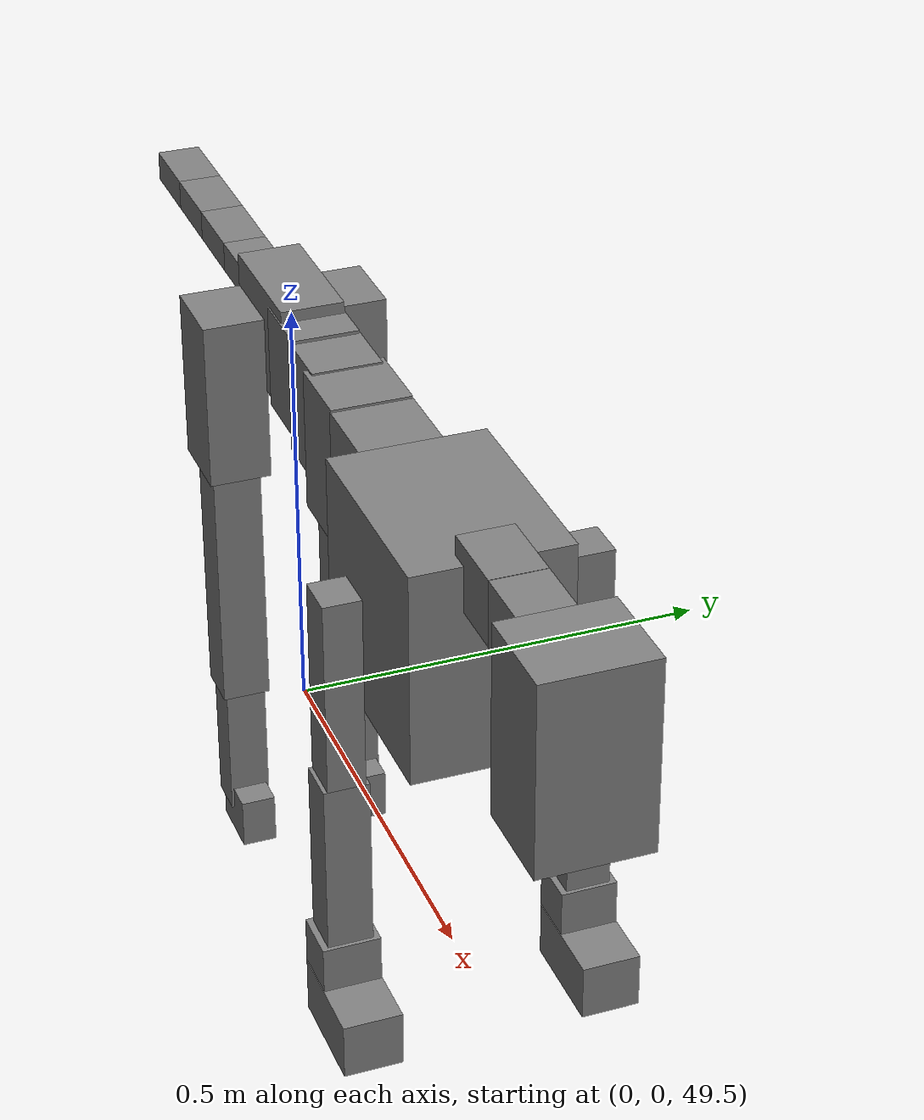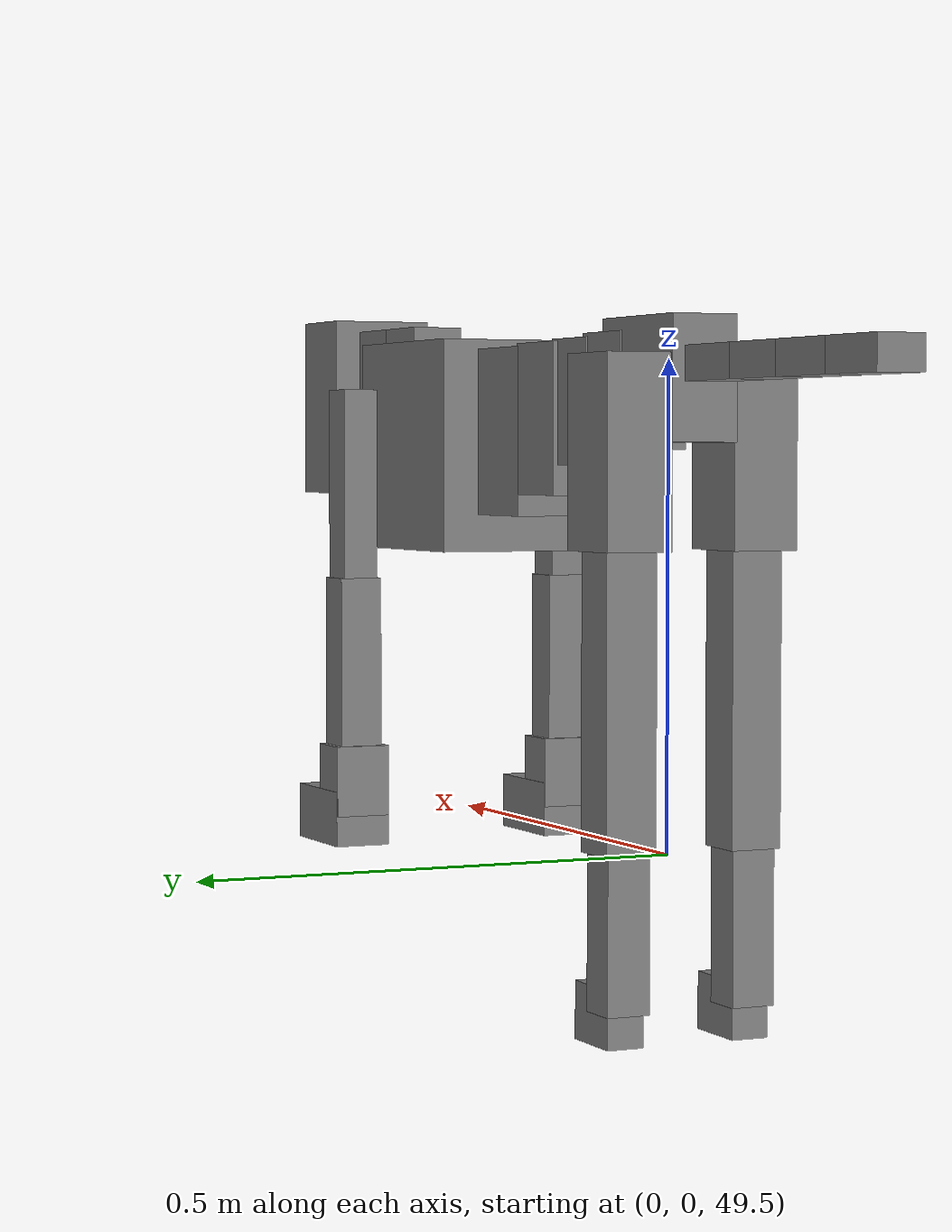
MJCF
<mujoco model="dog">

    <default>
        <joint armature="0.02" stiffness="1" damping="0.2" limited="true"/>
        <geom condim="3" friction="1 0.05 0.05" margin="0.01"/>
        <motor ctrllimited="true" ctrlrange="-1.0 1.0" forcelimited="true" gear="50"/>
    </default>

    <compiler inertiafromgeom="true" angle="radian"/>

    <option timestep="0.016" iterations="50" tolerance="1e-10" solver="Newton" jacobian="dense" cone="pyramidal"/>

    <size nconmax="20000" njmax="60000" nstack="5000000"/>
    <visual>
        <map force="0.1" zfar="30"/>
        <rgba haze="0.15 0.25 0.35 1"/>
        <quality shadowsize="2048"/>
        <global offwidth="800" offheight="800"/>
    </visual>

    <asset>
        <texture type="skybox" builtin="gradient" rgb1="0.3 0.5 0.7" rgb2="0 0 0" width="512" height="512"/>
        <texture name="texplane" type="2d" builtin="checker" rgb1=".2 .3 .4" rgb2=".1 0.15 0.2" width="512" height="512"
                 mark="cross" markrgb=".8 .8 .8"/>
        <texture name="texgeom" type="cube" builtin="flat" mark="cross" width="127" height="1278" rgb1="0.8 0.6 0.4"
                 rgb2="0.8 0.6 0.4" markrgb="1 1 1" random="0.01"/>

        <material name="matplane" reflectance="0.3" texture="texplane" texrepeat="1 1" texuniform="true"/>
        <material name="matgeom" texture="texgeom" texuniform="true" rgba="0.8 0.6 .4 1"/>
    </asset>

    <worldbody>
        <geom name="floor" pos="0 0 0" size="0 0 .25" type="plane" material="matplane" condim="3"/>

        <light directional="false" diffuse=".2 .2 .2" specular="0 0 0" pos="0 0 5" dir="0 0 -1" castshadow="false"/>
        <light mode="targetbodycom" target="torso" directional="false" diffuse=".8 .8 .8" specular="0.3 0.3 0.3"
               pos="0 0 4.0" dir="0 0 -1"/>

        <body name="root" pos="0 0 50">
            <freejoint name="root_1"/>
            <geom type="box" pos="0 0 -0.02" size="0.0774  0.0358  0.063" density="2030"/>

            <body name="spine1" pos="0.054 0 0">
                <joint name="spine1_y" axis="0 1 0" range="0 0.7" limited="true"/>
                <geom type="box" pos="0.02375 0 -0.03" size="0.04375  0.0375  0.05985" density="2030"/>

                <body name="spine2" pos="0.0612 0 0">
                    <joint name="spine2_y" axis="0 1 0" range="-0.15 0.15" limited="true"/>
                    <geom type="box" pos="0.03555  0  -0.04" size="0.04055  0.039  0.06615" density="2030"/>

                    <body name="spine3" pos="0.0730 0 0">
                        <joint name="spine3_y" axis="0 1 0" range="-0.15 0.15" limited="true"/>
                        <geom type="box" pos="0.03555  0  -0.057" size="0.04555  0.0445  0.081" density="2030"/>

                        <body name="spine4" pos="0.0780 0 0">
                            <joint name="spine4_y" axis="0 1 0" range="-0.15 0.15" limited="true"/>
                            <geom type="box" pos="0.05265  0  -0.07" size="0.05265  0.045  0.09135" density="2030"/>

                            <body name="torso" pos="0.1082 0 0">
                                <joint name="torso_y" axis="0 1 0" range="-0.15 0.15" limited="true"/>
                                <geom type="box" pos="0.11925  0  -0.085" size="0.11925  0.085  0.11745"
                                      density="2030"/>

                                <body name="neck1" pos="0.2160  0   0.0180">
                                    <joint name="neck1_y" axis="0 1 0" range="-1.2  -1" limited="true"/>
                                    <geom type="box" pos="0.0423  0  0" size="0.0423  0.03  0.036" density="2325"/>

                                    <body name="neck2" pos="0.0853  0  0">
                                        <joint name="neck2_y" axis="0 1 0" range="0.1  0" limited="true"/>
                                        <geom type="box" pos="0.0423  0  0" size="0.0423  0.03  0.036" density="2325"/>

                                        <body name="head" pos="0.0853  0  0">
                                            <joint name="head_y" axis="0 1 0" range="-0.3  -0.2" limited="true"/>
                                            <geom type="box" pos="0.0531  0  -0.055" size="0.0531  0.06  0.1044"
                                                  density="4030"/>

                                        </body>
                                    </body>
                                </body>

                                <body name="front_shoulder" pos="0.156  0   -0.0480">
                                    <joint name="front_shoulder_y" axis="0 1 0" range="-1 1.5" limited="true"/>
                                    <geom type="box" pos="0 0.13 -0.0936" size="0.0234  0.0200  0.1202" density="1158"/>
                                    <geom type="box" pos="0 -0.13 -0.0936" size="0.0234  0.0200  0.1202"
                                          density="1158"/>

                                    <body name="front_elbow" pos="0  0  -0.1871">
                                        <joint name="front_elbow_y" axis="0 1 0" range="-2 0" limited="true"/>
                                        <geom type="box" pos="0 0.13 -0.1022" size="0.0236  0.0242  0.1022"
                                              density="1081"/>
                                        <geom type="box" pos="0 -0.13 -0.1022" size="0.0236  0.0242  0.1022"
                                              density="1081"/>

                                        <body name="front_wrist" pos="0  0  -0.2044">
                                            <joint name="front_wrist_y" axis="0 1 0" range="-0.2 0" limited="true"/>
                                            <geom type="box" pos="0 0.13 -0.0267" size="0.0280  0.0311  0.0399"
                                                  density="1664"/>
                                            <geom type="box" pos="0 -0.13 -0.0267" size="0.0280  0.0311  0.0399"
                                                  density="1664"/>

                                            <body name="front_finger_end" pos="0  0  -0.0534">
                                                <joint name="front_finger_y" axis="0 1 0" range="-0.4 1"
                                                       limited="true"/>
                                                <geom type="box" pos="0.0317  0.13  -0.0162"
                                                      size="0.0582  0.0317  0.0312" density="1515"/>
                                                <geom type="box" pos="0.0317  -0.13  -0.0162"
                                                      size="0.0582  0.0317  0.0312" density="1515"/>

                                            </body>

                                        </body>
                                    </body>
                                </body>

                            </body>
                        </body>
                    </body>
                </body>
            </body>

            <body name="back_hip" pos="-0.03 0 -0.018">
                <joint name="back_hip_y" axis="0 1 0" range="-1.5 0.3" limited="true"/>
                <geom type="box" pos="0 0.07 -0.0750" size="0.0450  0.0353  0.0978" density="1154"/>
                <geom type="box" pos="0 -0.07 -0.0750" size="0.0450  0.0353  0.0978" density="1154"/>

                <body name="back_knee" pos="0  0  -0.1500">
                    <joint name="back_knee_y" axis="0 1 0" range="0 2.8" limited="true"/>
                    <geom type="box" pos="0 0.07 -0.1539" size="0.0280  0.0276  0.1695" density="1227"/>
                    <geom type="box" pos="0 -0.07 -0.1539" size="0.0280  0.0276  0.1695" density="1227"/>

                    <body name="back_ankle" pos="0  0  -0.3079">
                        <joint name="back_ankle_y" axis="0 1 0" range="-2.2 0" limited="true"/>
                        <geom type="box" pos="0 0.07 -0.0821" size="0.0233  0.0233  0.0933" density="1284"/>
                        <geom type="box" pos="0 -0.07 -0.0821" size="0.0233  0.0233  0.0933" density="1284"/>

                        <body name="back_toe_end" pos="0  0  -0.1641">
                            <joint name="back_toe_y" axis="0 1 0" range="-0.4 1" limited="true"/>
                            <geom type="box" pos="0.0201  0.07  -0.0150" size="0.0368  0.0201  0.0300" density="1515"/>
                            <geom type="box" pos="0.0201  -0.07  -0.0150" size="0.0368  0.0201  0.0300" density="1515"/>

                        </body>
                    </body>
                </body>
            </body>

            <body name="tail1" pos="-0.074 0 -0.006">
                <joint name="tail1_y" axis="0 1 0" range="-0.2 0.2" limited="true"/>
                <geom type="box" pos="-0.0536  0  0" size="0.045  0.025  0.0175" density="1587"/>

                <body name="tail2" pos="-0.09 0 0">
                    <joint name="tail2_y" axis="0 1 0" range="-0.2 0.2" limited="true"/>
                    <geom type="box" pos="-0.0536  0  0" size="0.045  0.025  0.0175" density="1587"/>

                    <body name="tail3" pos="-0.09 0 0">
                        <joint name="tail3_y" axis="0 1 0" range="-0.2 0.2" limited="true"/>
                        <geom type="box" pos="-0.0536  0  0" size="0.045  0.025  0.0175" density="1587"/>

                        <body name="tail4" pos="-0.09 0 0">
                            <joint name="tail4_y" axis="0 1 0" range="-0.2 0.2" limited="true"/>
                            <geom type="box" pos="-0.0536  0  0" size="0.045  0.025  0.0175" density="1587"/>

                        </body>
                    </body>
                </body>
            </body>
        </body>
    </worldbody>

    <actuator>
        <motor joint="spine1_y" forcerange="-150 150     "/>
        <motor joint="spine2_y" forcerange="-150 150     "/>
        <motor joint="spine3_y" forcerange="-150 150     "/>
        <motor joint="spine4_y" forcerange="-150 150     "/>
        <motor joint="torso_y" forcerange="-150 150     "/>
        <motor joint="neck1_y" forcerange="-100 100       "/>
        <motor joint="neck2_y" forcerange="-100 100       "/>
        <motor joint="head_y" forcerange="-150 150       "/>
        <motor joint="front_shoulder_y" forcerange="-123.53 109.89"/>
        <motor joint="front_elbow_y" forcerange="-144.15 131.52"/>
        <motor joint="front_wrist_y" forcerange="-119.56 129.56"/>
        <motor joint="front_finger_y" forcerange="-45.86 83.45"/>
        <motor joint="back_hip_y" forcerange="-271.10 399.65"/>
        <motor joint="back_knee_y" forcerange="-328.66 273.19"/>
        <motor joint="back_angle_y" forcerange="-168.66 103.85"/>
        <motor joint="back_toe_y" forcerange="-38.58 41.96"/>
        <motor joint="tail1_y" forcerange="-50 50     "/>
        <motor joint="tail2_y" forcerange="-50 50     "/>
        <motor joint="tail3_y" forcerange="-50 50     "/>
        <motor joint="tail4_y" forcerange="-50 50     "/>
    </actuator>
</mujoco>
